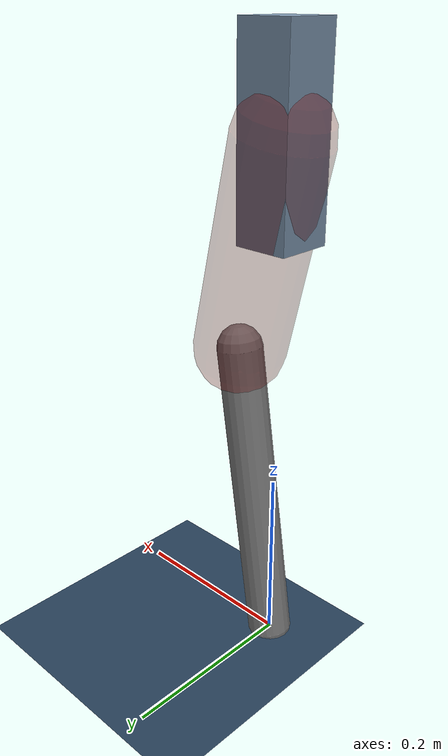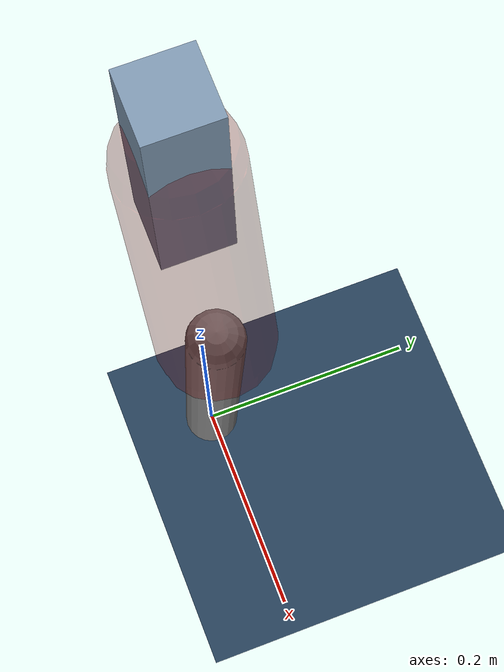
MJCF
<mujoco model="Hopper2D">
	<compiler inertiafromgeom="true" angle="radian" />
	<option timestep="0.001" integrator="implicit" cone="elliptic" solver="Newton" tolerance="1e-10" />

	<default>
		<geom contype="1" conaffinity="1" condim="3" friction="2 0.005 0.0001" solref="0.005 1" />
		<joint limited="true" damping="0.1" />
	</default>

	<asset>
		<texture name="skybox" type="skybox" builtin="gradient" rgb1=".4 .6 .8" rgb2="0 0 0" width="800" height="800" />
		<texture name="grid" type="2d" builtin="checker" rgb1=".1 .2 .3" rgb2=".2 .3 .4" width="300" height="300" mark="edge" markrgb=".2 .3 .4" />
		<material name="ground" texture="grid" texrepeat="1 1" texuniform="true" reflectance="0.1" />
		<material name="leg" rgba="0.5 0.6 0.7 1" />
	</asset>

	<worldbody>

		<geom name="floor" type="plane" size="5 5 0.25" material="ground" />

		<light directional="false" diffuse="0.8 0.8 0.8" specular="0.3 0.3 0.3" pos="0 0 2" dir="0 0 -1" />
		<light mode="targetbodycom" target="base" directional="false" diffuse="0.8 0.8 0.8" specular="0.3 0.3 0.3" pos="0 0 2" dir="0 0 -1" />

		<camera name="fixed" pos="0 -2 1" xyaxes="1 0 0 0 0 1" />
		<camera name="tracking" mode="trackcom" pos="0 -3 1" />

		<body name="root" pos="0 0 0.5652981954924271">
			<joint name="slide_x" type="slide" axis="1 0 0" range="-100 100" />
			<joint name="slide_z" type="slide" axis="0 0 1" range="0 10" />

			<body name="base" pos="0 0 0">
				<geom name="torso" type="box" size="0.03 0.03 0.1" mass="2.207" material="leg" />

				<body name="link1" pos="0 0 0" euler="0 1.3377131662566761 0">
					<joint type="hinge" axis="0 -1 0" pos="0 0 0" name="hinge1" limited="true" range="-3.14 3.14" stiffness="0" damping="0.1" />
					<geom name="thigh" type="capsule" fromto="0 0 0 0.22553645266861835 0 0" size="0.05" rgba="0.5 0 0 0.3" mass="0.7936947769384077" />

					<body name="link2" pos="0.22553645266861835 0 0" euler="0 0.3825809403585164 0">
						<joint type="hinge" axis="0 -1 0" pos="0 0 0" name="hinge2" limited="true" range="-3.14 3.14" stiffness="0" damping="0.1" />
						<geom name="shank" type="capsule" fromto="0 0 0 0.3497617428238088 0 0" size="0.025" mass="0.5237093942590471" />

					</body>
				</body>
			</body>
		</body>
	</worldbody>

	<actuator>
		<motor name="torque1" joint="hinge1" ctrlrange="-31.931537513532188 31.931537513532188" ctrllimited="true" gear="1" />
		<motor name="torque2" joint="hinge2" ctrlrange="-21.31265146820339 21.31265146820339" ctrllimited="true" gear="1" />
	</actuator>
</mujoco>
